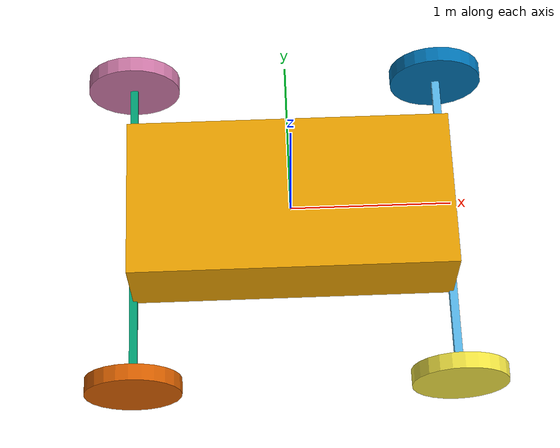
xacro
<robot name="plane" xmlns:xacro="http://www.ros.org/wiki/xacro">
    <link name="body">

        <visual>

            <geometry>
                <box size="2 1 0.5" />
            </geometry>
        </visual>

        <collision>
            <geometry>
                <box size="2 1 0.5" />
            </geometry>
        </collision>

        <inertial>
            <mass value="2" />
            <inertia ixx="1.04166666666666" ixy="0" ixz="0" iyz="0"
                iyy="3.5416666666666" izz="4.166666666666666" />
        </inertial>

    </link>
    ----------------------------------------------------------------------------  wheels

    ---------------------------------------------------------------------------front wheels

    <link name="wheel_base_front">
        <visual>
            <geometry>
                <box size="0.05 2 0.05" />
            </geometry>
        </visual>

        <collision>
            <geometry>
                <box size="0.05 2 0.05" />
            </geometry>
        </collision>

        <inertial>
            <mass value="0.1" />
            <inertia ixx="0.033354166666" ixy="0" ixz="0" iyz="0"
                iyy=" 0.00004166666" izz="0.033354166666" />
        </inertial>

    </link>

    <joint name=" body_to_wheel_base_front" type="fixed">
        <origin xyz="1 0 -0.25" rpy="0 0 0" />
        <parent link="body" />
        <child link="wheel_base_front" />
    </joint>

    <link name="wheel_base_rear">
        <visual>
            <geometry>
                <box size="0.05 2 0.05" />
            </geometry>
        </visual>

        <collision>
            <geometry>
                <box size="0.05 2 0.05" />
            </geometry>
        </collision>

        <inertial>
            <mass value="0.1" />
            <inertia ixx="0.033354166666" ixy="0" ixz="0" iyz="0"
                iyy=" 0.00004166666" izz="0.033354166666" />
        </inertial>

    </link>

    <joint name=" body_to_wheel_rear" type="fixed">
        <origin xyz="-1 0 -0.25" rpy="0 0 0" />
        <parent link="body" />
        <child link="wheel_base_rear" />
    </joint>

    <link name="left_wheel_front">
        <visual>
            <origin xyz="0 0 0.05" />
            <geometry>
                <cylinder radius="0.3" length="0.1" />
            </geometry>
        </visual>

        <collision>
            <origin xyz="0 0 0.05" />
            <geometry>
                <cylinder radius="0.3" length="0.1" />
            </geometry>
        </collision>

        <inertial>
            <origin xyz="0 0 0.05" />
            <mass value="0.1" />
            <inertia ixx="0.0023333333333333" ixy="0" ixz="0" iyz="0"
                iyy=" 0.0023333333333333" izz="0.00075" />
        </inertial>
    </link>

    <joint name=" wheel_base_to_left_wheel_front" type="continuous">
        <origin xyz="0 -1 0" rpy="1.57 0 0" />
        <parent link="wheel_base_front" />
        <child link="left_wheel_front" />
        <axis xyz=" 0 0 1" />
    </joint>

    <link name="right_wheel_front">
        <visual>
            <origin xyz="0 0 -0.05" />
            <geometry>
                <cylinder radius="0.3" length="0.1" />
            </geometry>
        </visual>

        <collision>
            <origin xyz="0 0 -0.05" />
            <geometry>
                <cylinder radius="0.3" length="0.1" />
            </geometry>
        </collision>

        <inertial>
            <origin xyz="0 0 -0.05" />
            <mass value="0.1" />
            <inertia ixx="0.0023333333333333" ixy="0" ixz="0" iyz="0"
                iyy=" 0.0023333333333333" izz="0.00075" />
        </inertial>
    </link>

    <joint name=" wheel_base_to_right_wheel_front" type="continuous">
        <origin xyz="0 1 0" rpy="1.57 0 0" />
        <parent link="wheel_base_front" />
        <child link="right_wheel_front" />
        <axis xyz=" 0 0 1" />
    </joint>

    --
    <link name="left_wheel_rear">
        <visual>
            <origin xyz="0 0 0.05" />
            <geometry>
                <cylinder radius="0.3" length="0.1" />
            </geometry>
        </visual>

        <collision>
            <origin xyz="0 0 0.05" />
            <geometry>
                <cylinder radius="0.3" length="0.1" />
            </geometry>
        </collision>

        <inertial>
            <origin xyz="0 0 0.05" />
            <mass value="0.1" />
            <inertia ixx="0.0023333333333333" ixy="0" ixz="0" iyz="0"
                iyy=" 0.0023333333333333" izz="0.00075" />
        </inertial>
    </link>

    <joint name=" wheel_base_to_left_wheel_rear" type="continuous">
        <origin xyz="0 -1 0" rpy="1.57 0 0" />
        <parent link="wheel_base_rear" />
        <child link="left_wheel_rear" />
        <axis xyz=" 0 0 1" />
    </joint>

    <link name="right_wheel_rear">
        <visual>
            <origin xyz="0 0 -0.05" />
            <geometry>
                <cylinder radius="0.3" length="0.1" />
            </geometry>
        </visual>

        <collision>
            <origin xyz="0 0 -0.05" />
            <geometry>
                <cylinder radius="0.3" length="0.1" />
            </geometry>
        </collision>

        <inertial>
            <origin xyz="0 0 -0.05" />
            <mass value="0.1" />
            <inertia ixx="0.0023333333333333" ixy="0" ixz="0" iyz="0"
                iyy=" 0.0023333333333333" izz="0.00075" />
        </inertial>
    </link>

    <joint name=" wheel_base_to_right_wheel_rear" type="continuous">
        <origin xyz="0 1 0" rpy="1.57 0 0" />
        <parent link="wheel_base_rear" />
        <child link="right_wheel_rear" />
        <axis xyz=" 0 0 1" />
    </joint>

    <gazebo>
    <plugin name="model_plugin" filename="libmodel_plugin.so"/>
  </gazebo>

</robot>
